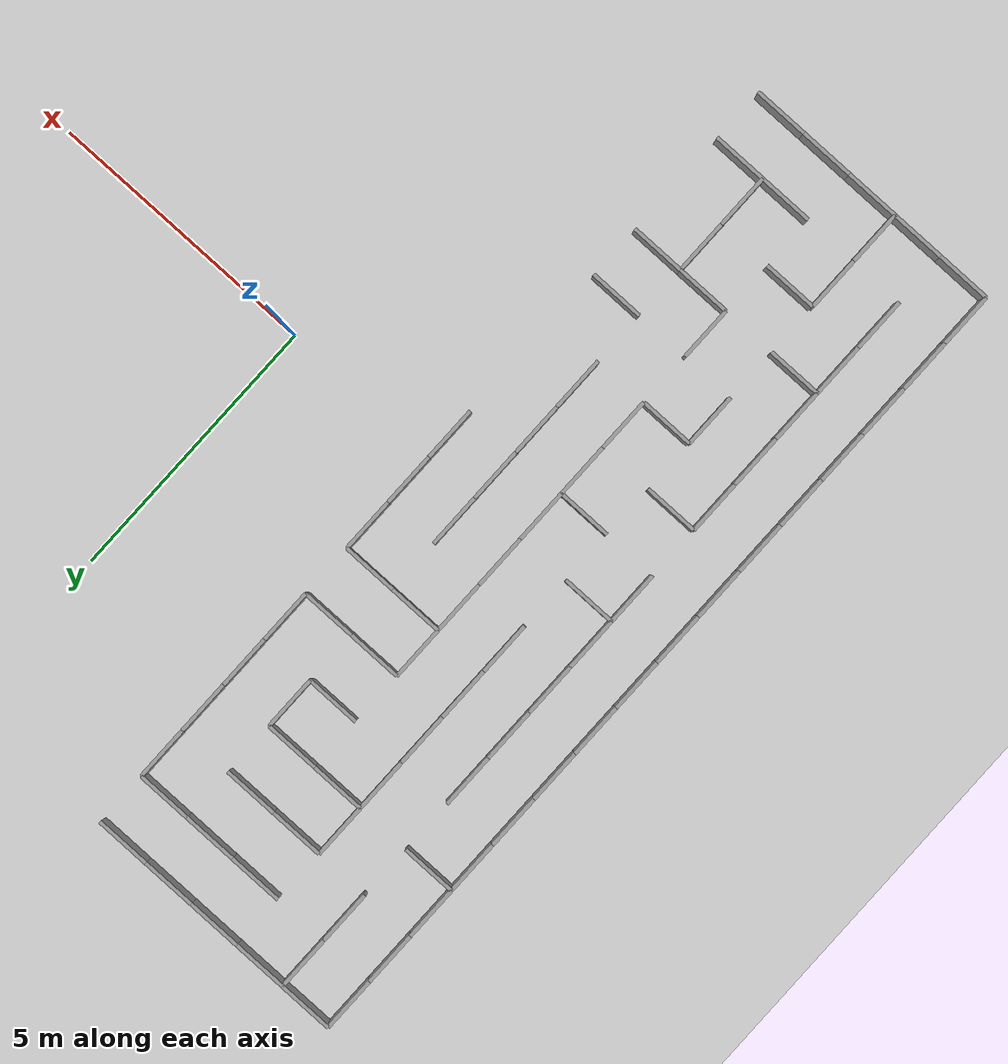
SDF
<sdf version="1.7">
 <world name="maze_world">
  <include><uri>model://sun</uri></include>
  <include><uri>model://ground_plane</uri></include>
  <model name="wall_0">
   <static>true</static>
   <pose>-7.5 8.0 0.25 0 0 0</pose>
   <link name="link">
    <collision name="collision"><geometry><box><size>1.0 0.066 0.5</size></box></geometry></collision>
    <visual name="visual">
     <geometry><box><size>1.0 0.066 0.5</size></box></geometry>
     <material>
      <script><uri>file://media/materials/scripts/gazebo.material</uri><name>Gazebo/Grey</name></script>
     </material>
    </visual>
   </link>
  </model>
  <model name="wall_1">
   <static>true</static>
   <pose>-6.5 8.0 0.25 0 0 0</pose>
   <link name="link">
    <collision name="collision"><geometry><box><size>1.0 0.066 0.5</size></box></geometry></collision>
    <visual name="visual">
     <geometry><box><size>1.0 0.066 0.5</size></box></geometry>
     <material>
      <script><uri>file://media/materials/scripts/gazebo.material</uri><name>Gazebo/Grey</name></script>
     </material>
    </visual>
   </link>
  </model>
  <model name="wall_2">
   <static>true</static>
   <pose>-5.5 8.0 0.25 0 0 0</pose>
   <link name="link">
    <collision name="collision"><geometry><box><size>1.0 0.066 0.5</size></box></geometry></collision>
    <visual name="visual">
     <geometry><box><size>1.0 0.066 0.5</size></box></geometry>
     <material>
      <script><uri>file://media/materials/scripts/gazebo.material</uri><name>Gazebo/Grey</name></script>
     </material>
    </visual>
   </link>
  </model>
  <model name="wall_3">
   <static>true</static>
   <pose>-4.5 8.0 0.25 0 0 0</pose>
   <link name="link">
    <collision name="collision"><geometry><box><size>1.0 0.066 0.5</size></box></geometry></collision>
    <visual name="visual">
     <geometry><box><size>1.0 0.066 0.5</size></box></geometry>
     <material>
      <script><uri>file://media/materials/scripts/gazebo.material</uri><name>Gazebo/Grey</name></script>
     </material>
    </visual>
   </link>
  </model>
  <model name="wall_4">
   <static>true</static>
   <pose>-3.5 8.0 0.25 0 0 0</pose>
   <link name="link">
    <collision name="collision"><geometry><box><size>1.0 0.066 0.5</size></box></geometry></collision>
    <visual name="visual">
     <geometry><box><size>1.0 0.066 0.5</size></box></geometry>
     <material>
      <script><uri>file://media/materials/scripts/gazebo.material</uri><name>Gazebo/Grey</name></script>
     </material>
    </visual>
   </link>
  </model>
  <model name="wall_16">
   <static>true</static>
   <pose>-8.0 7.5 0.25 0 0 1.5707963267948966</pose>
   <link name="link">
    <collision name="collision"><geometry><box><size>1.0 0.066 0.5</size></box></geometry></collision>
    <visual name="visual">
     <geometry><box><size>1.0 0.066 0.5</size></box></geometry>
     <material>
      <script><uri>file://media/materials/scripts/gazebo.material</uri><name>Gazebo/Grey</name></script>
     </material>
    </visual>
   </link>
  </model>
  <model name="wall_17">
   <static>true</static>
   <pose>-7.0 7.5 0.25 0 0 1.5707963267948966</pose>
   <link name="link">
    <collision name="collision"><geometry><box><size>1.0 0.066 0.5</size></box></geometry></collision>
    <visual name="visual">
     <geometry><box><size>1.0 0.066 0.5</size></box></geometry>
     <material>
      <script><uri>file://media/materials/scripts/gazebo.material</uri><name>Gazebo/Grey</name></script>
     </material>
    </visual>
   </link>
  </model>
  <model name="wall_19">
   <static>true</static>
   <pose>-5.5 7.0 0.25 0 0 0</pose>
   <link name="link">
    <collision name="collision"><geometry><box><size>1.0 0.066 0.5</size></box></geometry></collision>
    <visual name="visual">
     <geometry><box><size>1.0 0.066 0.5</size></box></geometry>
     <material>
      <script><uri>file://media/materials/scripts/gazebo.material</uri><name>Gazebo/Grey</name></script>
     </material>
    </visual>
   </link>
  </model>
  <model name="wall_20">
   <static>true</static>
   <pose>-4.5 7.0 0.25 0 0 0</pose>
   <link name="link">
    <collision name="collision"><geometry><box><size>1.0 0.066 0.5</size></box></geometry></collision>
    <visual name="visual">
     <geometry><box><size>1.0 0.066 0.5</size></box></geometry>
     <material>
      <script><uri>file://media/materials/scripts/gazebo.material</uri><name>Gazebo/Grey</name></script>
     </material>
    </visual>
   </link>
  </model>
  <model name="wall_21">
   <static>true</static>
   <pose>-3.5 7.0 0.25 0 0 0</pose>
   <link name="link">
    <collision name="collision"><geometry><box><size>1.0 0.066 0.5</size></box></geometry></collision>
    <visual name="visual">
     <geometry><box><size>1.0 0.066 0.5</size></box></geometry>
     <material>
      <script><uri>file://media/materials/scripts/gazebo.material</uri><name>Gazebo/Grey</name></script>
     </material>
    </visual>
   </link>
  </model>
  <model name="wall_30">
   <static>true</static>
   <pose>-8.0 6.5 0.25 0 0 1.5707963267948966</pose>
   <link name="link">
    <collision name="collision"><geometry><box><size>1.0 0.066 0.5</size></box></geometry></collision>
    <visual name="visual">
     <geometry><box><size>1.0 0.066 0.5</size></box></geometry>
     <material>
      <script><uri>file://media/materials/scripts/gazebo.material</uri><name>Gazebo/Grey</name></script>
     </material>
    </visual>
   </link>
  </model>
  <model name="wall_31">
   <static>true</static>
   <pose>-7.0 6.5 0.25 0 0 1.5707963267948966</pose>
   <link name="link">
    <collision name="collision"><geometry><box><size>1.0 0.066 0.5</size></box></geometry></collision>
    <visual name="visual">
     <geometry><box><size>1.0 0.066 0.5</size></box></geometry>
     <material>
      <script><uri>file://media/materials/scripts/gazebo.material</uri><name>Gazebo/Grey</name></script>
     </material>
    </visual>
   </link>
  </model>
  <model name="wall_32">
   <static>true</static>
   <pose>-3.0 6.5 0.25 0 0 1.5707963267948966</pose>
   <link name="link">
    <collision name="collision"><geometry><box><size>1.0 0.066 0.5</size></box></geometry></collision>
    <visual name="visual">
     <geometry><box><size>1.0 0.066 0.5</size></box></geometry>
     <material>
      <script><uri>file://media/materials/scripts/gazebo.material</uri><name>Gazebo/Grey</name></script>
     </material>
    </visual>
   </link>
  </model>
  <model name="wall_37">
   <static>true</static>
   <pose>-5.5 6.0 0.25 0 0 0</pose>
   <link name="link">
    <collision name="collision"><geometry><box><size>1.0 0.066 0.5</size></box></geometry></collision>
    <visual name="visual">
     <geometry><box><size>1.0 0.066 0.5</size></box></geometry>
     <material>
      <script><uri>file://media/materials/scripts/gazebo.material</uri><name>Gazebo/Grey</name></script>
     </material>
    </visual>
   </link>
  </model>
  <model name="wall_38">
   <static>true</static>
   <pose>-4.5 6.0 0.25 0 0 0</pose>
   <link name="link">
    <collision name="collision"><geometry><box><size>1.0 0.066 0.5</size></box></geometry></collision>
    <visual name="visual">
     <geometry><box><size>1.0 0.066 0.5</size></box></geometry>
     <material>
      <script><uri>file://media/materials/scripts/gazebo.material</uri><name>Gazebo/Grey</name></script>
     </material>
    </visual>
   </link>
  </model>
  <model name="wall_46">
   <static>true</static>
   <pose>-8.0 5.5 0.25 0 0 1.5707963267948966</pose>
   <link name="link">
    <collision name="collision"><geometry><box><size>1.0 0.066 0.5</size></box></geometry></collision>
    <visual name="visual">
     <geometry><box><size>1.0 0.066 0.5</size></box></geometry>
     <material>
      <script><uri>file://media/materials/scripts/gazebo.material</uri><name>Gazebo/Grey</name></script>
     </material>
    </visual>
   </link>
  </model>
  <model name="wall_47">
   <static>true</static>
   <pose>-6.0 5.5 0.25 0 0 1.5707963267948966</pose>
   <link name="link">
    <collision name="collision"><geometry><box><size>1.0 0.066 0.5</size></box></geometry></collision>
    <visual name="visual">
     <geometry><box><size>1.0 0.066 0.5</size></box></geometry>
     <material>
      <script><uri>file://media/materials/scripts/gazebo.material</uri><name>Gazebo/Grey</name></script>
     </material>
    </visual>
   </link>
  </model>
  <model name="wall_48">
   <static>true</static>
   <pose>-3.0 5.5 0.25 0 0 1.5707963267948966</pose>
   <link name="link">
    <collision name="collision"><geometry><box><size>1.0 0.066 0.5</size></box></geometry></collision>
    <visual name="visual">
     <geometry><box><size>1.0 0.066 0.5</size></box></geometry>
     <material>
      <script><uri>file://media/materials/scripts/gazebo.material</uri><name>Gazebo/Grey</name></script>
     </material>
    </visual>
   </link>
  </model>
  <model name="wall_53">
   <static>true</static>
   <pose>-7.5 5.0 0.25 0 0 0</pose>
   <link name="link">
    <collision name="collision"><geometry><box><size>1.0 0.066 0.5</size></box></geometry></collision>
    <visual name="visual">
     <geometry><box><size>1.0 0.066 0.5</size></box></geometry>
     <material>
      <script><uri>file://media/materials/scripts/gazebo.material</uri><name>Gazebo/Grey</name></script>
     </material>
    </visual>
   </link>
  </model>
  <model name="wall_54">
   <static>true</static>
   <pose>-5.5 5.0 0.25 0 0 0</pose>
   <link name="link">
    <collision name="collision"><geometry><box><size>1.0 0.066 0.5</size></box></geometry></collision>
    <visual name="visual">
     <geometry><box><size>1.0 0.066 0.5</size></box></geometry>
     <material>
      <script><uri>file://media/materials/scripts/gazebo.material</uri><name>Gazebo/Grey</name></script>
     </material>
    </visual>
   </link>
  </model>
  <model name="wall_55">
   <static>true</static>
   <pose>-4.5 5.0 0.25 0 0 0</pose>
   <link name="link">
    <collision name="collision"><geometry><box><size>1.0 0.066 0.5</size></box></geometry></collision>
    <visual name="visual">
     <geometry><box><size>1.0 0.066 0.5</size></box></geometry>
     <material>
      <script><uri>file://media/materials/scripts/gazebo.material</uri><name>Gazebo/Grey</name></script>
     </material>
    </visual>
   </link>
  </model>
  <model name="wall_62">
   <static>true</static>
   <pose>-8.0 4.5 0.25 0 0 1.5707963267948966</pose>
   <link name="link">
    <collision name="collision"><geometry><box><size>1.0 0.066 0.5</size></box></geometry></collision>
    <visual name="visual">
     <geometry><box><size>1.0 0.066 0.5</size></box></geometry>
     <material>
      <script><uri>file://media/materials/scripts/gazebo.material</uri><name>Gazebo/Grey</name></script>
     </material>
    </visual>
   </link>
  </model>
  <model name="wall_63">
   <static>true</static>
   <pose>-6.0 4.5 0.25 0 0 1.5707963267948966</pose>
   <link name="link">
    <collision name="collision"><geometry><box><size>1.0 0.066 0.5</size></box></geometry></collision>
    <visual name="visual">
     <geometry><box><size>1.0 0.066 0.5</size></box></geometry>
     <material>
      <script><uri>file://media/materials/scripts/gazebo.material</uri><name>Gazebo/Grey</name></script>
     </material>
    </visual>
   </link>
  </model>
  <model name="wall_64">
   <static>true</static>
   <pose>-4.0 4.5 0.25 0 0 1.5707963267948966</pose>
   <link name="link">
    <collision name="collision"><geometry><box><size>1.0 0.066 0.5</size></box></geometry></collision>
    <visual name="visual">
     <geometry><box><size>1.0 0.066 0.5</size></box></geometry>
     <material>
      <script><uri>file://media/materials/scripts/gazebo.material</uri><name>Gazebo/Grey</name></script>
     </material>
    </visual>
   </link>
  </model>
  <model name="wall_65">
   <static>true</static>
   <pose>-3.0 4.5 0.25 0 0 1.5707963267948966</pose>
   <link name="link">
    <collision name="collision"><geometry><box><size>1.0 0.066 0.5</size></box></geometry></collision>
    <visual name="visual">
     <geometry><box><size>1.0 0.066 0.5</size></box></geometry>
     <material>
      <script><uri>file://media/materials/scripts/gazebo.material</uri><name>Gazebo/Grey</name></script>
     </material>
    </visual>
   </link>
  </model>
  <model name="wall_71">
   <static>true</static>
   <pose>-4.5 4.0 0.25 0 0 0</pose>
   <link name="link">
    <collision name="collision"><geometry><box><size>1.0 0.066 0.5</size></box></geometry></collision>
    <visual name="visual">
     <geometry><box><size>1.0 0.066 0.5</size></box></geometry>
     <material>
      <script><uri>file://media/materials/scripts/gazebo.material</uri><name>Gazebo/Grey</name></script>
     </material>
    </visual>
   </link>
  </model>
  <model name="wall_75">
   <static>true</static>
   <pose>-8.0 3.5 0.25 0 0 1.5707963267948966</pose>
   <link name="link">
    <collision name="collision"><geometry><box><size>1.0 0.066 0.5</size></box></geometry></collision>
    <visual name="visual">
     <geometry><box><size>1.0 0.066 0.5</size></box></geometry>
     <material>
      <script><uri>file://media/materials/scripts/gazebo.material</uri><name>Gazebo/Grey</name></script>
     </material>
    </visual>
   </link>
  </model>
  <model name="wall_76">
   <static>true</static>
   <pose>-7.0 3.5 0.25 0 0 1.5707963267948966</pose>
   <link name="link">
    <collision name="collision"><geometry><box><size>1.0 0.066 0.5</size></box></geometry></collision>
    <visual name="visual">
     <geometry><box><size>1.0 0.066 0.5</size></box></geometry>
     <material>
      <script><uri>file://media/materials/scripts/gazebo.material</uri><name>Gazebo/Grey</name></script>
     </material>
    </visual>
   </link>
  </model>
  <model name="wall_77">
   <static>true</static>
   <pose>-6.0 3.5 0.25 0 0 1.5707963267948966</pose>
   <link name="link">
    <collision name="collision"><geometry><box><size>1.0 0.066 0.5</size></box></geometry></collision>
    <visual name="visual">
     <geometry><box><size>1.0 0.066 0.5</size></box></geometry>
     <material>
      <script><uri>file://media/materials/scripts/gazebo.material</uri><name>Gazebo/Grey</name></script>
     </material>
    </visual>
   </link>
  </model>
  <model name="wall_78">
   <static>true</static>
   <pose>-3.0 3.5 0.25 0 0 1.5707963267948966</pose>
   <link name="link">
    <collision name="collision"><geometry><box><size>1.0 0.066 0.5</size></box></geometry></collision>
    <visual name="visual">
     <geometry><box><size>1.0 0.066 0.5</size></box></geometry>
     <material>
      <script><uri>file://media/materials/scripts/gazebo.material</uri><name>Gazebo/Grey</name></script>
     </material>
    </visual>
   </link>
  </model>
  <model name="wall_86">
   <static>true</static>
   <pose>-4.5 3.0 0.25 0 0 0</pose>
   <link name="link">
    <collision name="collision"><geometry><box><size>1.0 0.066 0.5</size></box></geometry></collision>
    <visual name="visual">
     <geometry><box><size>1.0 0.066 0.5</size></box></geometry>
     <material>
      <script><uri>file://media/materials/scripts/gazebo.material</uri><name>Gazebo/Grey</name></script>
     </material>
    </visual>
   </link>
  </model>
  <model name="wall_87">
   <static>true</static>
   <pose>-3.5 3.0 0.25 0 0 0</pose>
   <link name="link">
    <collision name="collision"><geometry><box><size>1.0 0.066 0.5</size></box></geometry></collision>
    <visual name="visual">
     <geometry><box><size>1.0 0.066 0.5</size></box></geometry>
     <material>
      <script><uri>file://media/materials/scripts/gazebo.material</uri><name>Gazebo/Grey</name></script>
     </material>
    </visual>
   </link>
  </model>
  <model name="wall_92">
   <static>true</static>
   <pose>-8.0 2.5 0.25 0 0 1.5707963267948966</pose>
   <link name="link">
    <collision name="collision"><geometry><box><size>1.0 0.066 0.5</size></box></geometry></collision>
    <visual name="visual">
     <geometry><box><size>1.0 0.066 0.5</size></box></geometry>
     <material>
      <script><uri>file://media/materials/scripts/gazebo.material</uri><name>Gazebo/Grey</name></script>
     </material>
    </visual>
   </link>
  </model>
  <model name="wall_93">
   <static>true</static>
   <pose>-7.0 2.5 0.25 0 0 1.5707963267948966</pose>
   <link name="link">
    <collision name="collision"><geometry><box><size>1.0 0.066 0.5</size></box></geometry></collision>
    <visual name="visual">
     <geometry><box><size>1.0 0.066 0.5</size></box></geometry>
     <material>
      <script><uri>file://media/materials/scripts/gazebo.material</uri><name>Gazebo/Grey</name></script>
     </material>
    </visual>
   </link>
  </model>
  <model name="wall_94">
   <static>true</static>
   <pose>-6.0 2.5 0.25 0 0 1.5707963267948966</pose>
   <link name="link">
    <collision name="collision"><geometry><box><size>1.0 0.066 0.5</size></box></geometry></collision>
    <visual name="visual">
     <geometry><box><size>1.0 0.066 0.5</size></box></geometry>
     <material>
      <script><uri>file://media/materials/scripts/gazebo.material</uri><name>Gazebo/Grey</name></script>
     </material>
    </visual>
   </link>
  </model>
  <model name="wall_95">
   <static>true</static>
   <pose>-5.0 2.5 0.25 0 0 1.5707963267948966</pose>
   <link name="link">
    <collision name="collision"><geometry><box><size>1.0 0.066 0.5</size></box></geometry></collision>
    <visual name="visual">
     <geometry><box><size>1.0 0.066 0.5</size></box></geometry>
     <material>
      <script><uri>file://media/materials/scripts/gazebo.material</uri><name>Gazebo/Grey</name></script>
     </material>
    </visual>
   </link>
  </model>
  <model name="wall_102">
   <static>true</static>
   <pose>-4.5 2.0 0.25 0 0 0</pose>
   <link name="link">
    <collision name="collision"><geometry><box><size>1.0 0.066 0.5</size></box></geometry></collision>
    <visual name="visual">
     <geometry><box><size>1.0 0.066 0.5</size></box></geometry>
     <material>
      <script><uri>file://media/materials/scripts/gazebo.material</uri><name>Gazebo/Grey</name></script>
     </material>
    </visual>
   </link>
  </model>
  <model name="wall_103">
   <static>true</static>
   <pose>-3.5 2.0 0.25 0 0 0</pose>
   <link name="link">
    <collision name="collision"><geometry><box><size>1.0 0.066 0.5</size></box></geometry></collision>
    <visual name="visual">
     <geometry><box><size>1.0 0.066 0.5</size></box></geometry>
     <material>
      <script><uri>file://media/materials/scripts/gazebo.material</uri><name>Gazebo/Grey</name></script>
     </material>
    </visual>
   </link>
  </model>
  <model name="wall_108">
   <static>true</static>
   <pose>-8.0 1.5 0.25 0 0 1.5707963267948966</pose>
   <link name="link">
    <collision name="collision"><geometry><box><size>1.0 0.066 0.5</size></box></geometry></collision>
    <visual name="visual">
     <geometry><box><size>1.0 0.066 0.5</size></box></geometry>
     <material>
      <script><uri>file://media/materials/scripts/gazebo.material</uri><name>Gazebo/Grey</name></script>
     </material>
    </visual>
   </link>
  </model>
  <model name="wall_109">
   <static>true</static>
   <pose>-7.0 1.5 0.25 0 0 1.5707963267948966</pose>
   <link name="link">
    <collision name="collision"><geometry><box><size>1.0 0.066 0.5</size></box></geometry></collision>
    <visual name="visual">
     <geometry><box><size>1.0 0.066 0.5</size></box></geometry>
     <material>
      <script><uri>file://media/materials/scripts/gazebo.material</uri><name>Gazebo/Grey</name></script>
     </material>
    </visual>
   </link>
  </model>
  <model name="wall_110">
   <static>true</static>
   <pose>-6.0 1.5 0.25 0 0 1.5707963267948966</pose>
   <link name="link">
    <collision name="collision"><geometry><box><size>1.0 0.066 0.5</size></box></geometry></collision>
    <visual name="visual">
     <geometry><box><size>1.0 0.066 0.5</size></box></geometry>
     <material>
      <script><uri>file://media/materials/scripts/gazebo.material</uri><name>Gazebo/Grey</name></script>
     </material>
    </visual>
   </link>
  </model>
  <model name="wall_111">
   <static>true</static>
   <pose>-5.0 1.5 0.25 0 0 1.5707963267948966</pose>
   <link name="link">
    <collision name="collision"><geometry><box><size>1.0 0.066 0.5</size></box></geometry></collision>
    <visual name="visual">
     <geometry><box><size>1.0 0.066 0.5</size></box></geometry>
     <material>
      <script><uri>file://media/materials/scripts/gazebo.material</uri><name>Gazebo/Grey</name></script>
     </material>
    </visual>
   </link>
  </model>
  <model name="wall_112">
   <static>true</static>
   <pose>-3.0 1.5 0.25 0 0 1.5707963267948966</pose>
   <link name="link">
    <collision name="collision"><geometry><box><size>1.0 0.066 0.5</size></box></geometry></collision>
    <visual name="visual">
     <geometry><box><size>1.0 0.066 0.5</size></box></geometry>
     <material>
      <script><uri>file://media/materials/scripts/gazebo.material</uri><name>Gazebo/Grey</name></script>
     </material>
    </visual>
   </link>
  </model>
  <model name="wall_124">
   <static>true</static>
   <pose>-8.0 0.5 0.25 0 0 1.5707963267948966</pose>
   <link name="link">
    <collision name="collision"><geometry><box><size>1.0 0.066 0.5</size></box></geometry></collision>
    <visual name="visual">
     <geometry><box><size>1.0 0.066 0.5</size></box></geometry>
     <material>
      <script><uri>file://media/materials/scripts/gazebo.material</uri><name>Gazebo/Grey</name></script>
     </material>
    </visual>
   </link>
  </model>
  <model name="wall_125">
   <static>true</static>
   <pose>-7.0 0.5 0.25 0 0 1.5707963267948966</pose>
   <link name="link">
    <collision name="collision"><geometry><box><size>1.0 0.066 0.5</size></box></geometry></collision>
    <visual name="visual">
     <geometry><box><size>1.0 0.066 0.5</size></box></geometry>
     <material>
      <script><uri>file://media/materials/scripts/gazebo.material</uri><name>Gazebo/Grey</name></script>
     </material>
    </visual>
   </link>
  </model>
  <model name="wall_126">
   <static>true</static>
   <pose>-5.0 0.5 0.25 0 0 1.5707963267948966</pose>
   <link name="link">
    <collision name="collision"><geometry><box><size>1.0 0.066 0.5</size></box></geometry></collision>
    <visual name="visual">
     <geometry><box><size>1.0 0.066 0.5</size></box></geometry>
     <material>
      <script><uri>file://media/materials/scripts/gazebo.material</uri><name>Gazebo/Grey</name></script>
     </material>
    </visual>
   </link>
  </model>
  <model name="wall_127">
   <static>true</static>
   <pose>-4.0 0.5 0.25 0 0 1.5707963267948966</pose>
   <link name="link">
    <collision name="collision"><geometry><box><size>1.0 0.066 0.5</size></box></geometry></collision>
    <visual name="visual">
     <geometry><box><size>1.0 0.066 0.5</size></box></geometry>
     <material>
      <script><uri>file://media/materials/scripts/gazebo.material</uri><name>Gazebo/Grey</name></script>
     </material>
    </visual>
   </link>
  </model>
  <model name="wall_128">
   <static>true</static>
   <pose>-3.0 0.5 0.25 0 0 1.5707963267948966</pose>
   <link name="link">
    <collision name="collision"><geometry><box><size>1.0 0.066 0.5</size></box></geometry></collision>
    <visual name="visual">
     <geometry><box><size>1.0 0.066 0.5</size></box></geometry>
     <material>
      <script><uri>file://media/materials/scripts/gazebo.material</uri><name>Gazebo/Grey</name></script>
     </material>
    </visual>
   </link>
  </model>
  <model name="wall_137">
   <static>true</static>
   <pose>-6.5 0.0 0.25 0 0 0</pose>
   <link name="link">
    <collision name="collision"><geometry><box><size>1.0 0.066 0.5</size></box></geometry></collision>
    <visual name="visual">
     <geometry><box><size>1.0 0.066 0.5</size></box></geometry>
     <material>
      <script><uri>file://media/materials/scripts/gazebo.material</uri><name>Gazebo/Grey</name></script>
     </material>
    </visual>
   </link>
  </model>
  <model name="wall_140">
   <static>true</static>
   <pose>-8.0 -0.5 0.25 0 0 1.5707963267948966</pose>
   <link name="link">
    <collision name="collision"><geometry><box><size>1.0 0.066 0.5</size></box></geometry></collision>
    <visual name="visual">
     <geometry><box><size>1.0 0.066 0.5</size></box></geometry>
     <material>
      <script><uri>file://media/materials/scripts/gazebo.material</uri><name>Gazebo/Grey</name></script>
     </material>
    </visual>
   </link>
  </model>
  <model name="wall_141">
   <static>true</static>
   <pose>-7.0 -0.5 0.25 0 0 1.5707963267948966</pose>
   <link name="link">
    <collision name="collision"><geometry><box><size>1.0 0.066 0.5</size></box></geometry></collision>
    <visual name="visual">
     <geometry><box><size>1.0 0.066 0.5</size></box></geometry>
     <material>
      <script><uri>file://media/materials/scripts/gazebo.material</uri><name>Gazebo/Grey</name></script>
     </material>
    </visual>
   </link>
  </model>
  <model name="wall_142">
   <static>true</static>
   <pose>-5.0 -0.5 0.25 0 0 1.5707963267948966</pose>
   <link name="link">
    <collision name="collision"><geometry><box><size>1.0 0.066 0.5</size></box></geometry></collision>
    <visual name="visual">
     <geometry><box><size>1.0 0.066 0.5</size></box></geometry>
     <material>
      <script><uri>file://media/materials/scripts/gazebo.material</uri><name>Gazebo/Grey</name></script>
     </material>
    </visual>
   </link>
  </model>
  <model name="wall_143">
   <static>true</static>
   <pose>-4.0 -0.5 0.25 0 0 1.5707963267948966</pose>
   <link name="link">
    <collision name="collision"><geometry><box><size>1.0 0.066 0.5</size></box></geometry></collision>
    <visual name="visual">
     <geometry><box><size>1.0 0.066 0.5</size></box></geometry>
     <material>
      <script><uri>file://media/materials/scripts/gazebo.material</uri><name>Gazebo/Grey</name></script>
     </material>
    </visual>
   </link>
  </model>
  <model name="wall_144">
   <static>true</static>
   <pose>-3.0 -0.5 0.25 0 0 1.5707963267948966</pose>
   <link name="link">
    <collision name="collision"><geometry><box><size>1.0 0.066 0.5</size></box></geometry></collision>
    <visual name="visual">
     <geometry><box><size>1.0 0.066 0.5</size></box></geometry>
     <material>
      <script><uri>file://media/materials/scripts/gazebo.material</uri><name>Gazebo/Grey</name></script>
     </material>
    </visual>
   </link>
  </model>
  <model name="wall_152">
   <static>true</static>
   <pose>-5.5 -1.0 0.25 0 0 0</pose>
   <link name="link">
    <collision name="collision"><geometry><box><size>1.0 0.066 0.5</size></box></geometry></collision>
    <visual name="visual">
     <geometry><box><size>1.0 0.066 0.5</size></box></geometry>
     <material>
      <script><uri>file://media/materials/scripts/gazebo.material</uri><name>Gazebo/Grey</name></script>
     </material>
    </visual>
   </link>
  </model>
  <model name="wall_157">
   <static>true</static>
   <pose>-8.0 -1.5 0.25 0 0 1.5707963267948966</pose>
   <link name="link">
    <collision name="collision"><geometry><box><size>1.0 0.066 0.5</size></box></geometry></collision>
    <visual name="visual">
     <geometry><box><size>1.0 0.066 0.5</size></box></geometry>
     <material>
      <script><uri>file://media/materials/scripts/gazebo.material</uri><name>Gazebo/Grey</name></script>
     </material>
    </visual>
   </link>
  </model>
  <model name="wall_158">
   <static>true</static>
   <pose>-5.0 -1.5 0.25 0 0 1.5707963267948966</pose>
   <link name="link">
    <collision name="collision"><geometry><box><size>1.0 0.066 0.5</size></box></geometry></collision>
    <visual name="visual">
     <geometry><box><size>1.0 0.066 0.5</size></box></geometry>
     <material>
      <script><uri>file://media/materials/scripts/gazebo.material</uri><name>Gazebo/Grey</name></script>
     </material>
    </visual>
   </link>
  </model>
  <model name="wall_159">
   <static>true</static>
   <pose>-4.0 -1.5 0.25 0 0 1.5707963267948966</pose>
   <link name="link">
    <collision name="collision"><geometry><box><size>1.0 0.066 0.5</size></box></geometry></collision>
    <visual name="visual">
     <geometry><box><size>1.0 0.066 0.5</size></box></geometry>
     <material>
      <script><uri>file://media/materials/scripts/gazebo.material</uri><name>Gazebo/Grey</name></script>
     </material>
    </visual>
   </link>
  </model>
  <model name="wall_167">
   <static>true</static>
   <pose>-6.5 -2.0 0.25 0 0 0</pose>
   <link name="link">
    <collision name="collision"><geometry><box><size>1.0 0.066 0.5</size></box></geometry></collision>
    <visual name="visual">
     <geometry><box><size>1.0 0.066 0.5</size></box></geometry>
     <material>
      <script><uri>file://media/materials/scripts/gazebo.material</uri><name>Gazebo/Grey</name></script>
     </material>
    </visual>
   </link>
  </model>
  <model name="wall_172">
   <static>true</static>
   <pose>-8.0 -2.5 0.25 0 0 1.5707963267948966</pose>
   <link name="link">
    <collision name="collision"><geometry><box><size>1.0 0.066 0.5</size></box></geometry></collision>
    <visual name="visual">
     <geometry><box><size>1.0 0.066 0.5</size></box></geometry>
     <material>
      <script><uri>file://media/materials/scripts/gazebo.material</uri><name>Gazebo/Grey</name></script>
     </material>
    </visual>
   </link>
  </model>
  <model name="wall_173">
   <static>true</static>
   <pose>-7.0 -2.5 0.25 0 0 1.5707963267948966</pose>
   <link name="link">
    <collision name="collision"><geometry><box><size>1.0 0.066 0.5</size></box></geometry></collision>
    <visual name="visual">
     <geometry><box><size>1.0 0.066 0.5</size></box></geometry>
     <material>
      <script><uri>file://media/materials/scripts/gazebo.material</uri><name>Gazebo/Grey</name></script>
     </material>
    </visual>
   </link>
  </model>
  <model name="wall_174">
   <static>true</static>
   <pose>-5.0 -2.5 0.25 0 0 1.5707963267948966</pose>
   <link name="link">
    <collision name="collision"><geometry><box><size>1.0 0.066 0.5</size></box></geometry></collision>
    <visual name="visual">
     <geometry><box><size>1.0 0.066 0.5</size></box></geometry>
     <material>
      <script><uri>file://media/materials/scripts/gazebo.material</uri><name>Gazebo/Grey</name></script>
     </material>
    </visual>
   </link>
  </model>
  <model name="wall_175">
   <static>true</static>
   <pose>-4.0 -2.5 0.25 0 0 1.5707963267948966</pose>
   <link name="link">
    <collision name="collision"><geometry><box><size>1.0 0.066 0.5</size></box></geometry></collision>
    <visual name="visual">
     <geometry><box><size>1.0 0.066 0.5</size></box></geometry>
     <material>
      <script><uri>file://media/materials/scripts/gazebo.material</uri><name>Gazebo/Grey</name></script>
     </material>
    </visual>
   </link>
  </model>
  <model name="wall_183">
   <static>true</static>
   <pose>-5.5 -3.0 0.25 0 0 0</pose>
   <link name="link">
    <collision name="collision"><geometry><box><size>1.0 0.066 0.5</size></box></geometry></collision>
    <visual name="visual">
     <geometry><box><size>1.0 0.066 0.5</size></box></geometry>
     <material>
      <script><uri>file://media/materials/scripts/gazebo.material</uri><name>Gazebo/Grey</name></script>
     </material>
    </visual>
   </link>
  </model>
  <model name="wall_189">
   <static>true</static>
   <pose>-8.0 -3.5 0.25 0 0 1.5707963267948966</pose>
   <link name="link">
    <collision name="collision"><geometry><box><size>1.0 0.066 0.5</size></box></geometry></collision>
    <visual name="visual">
     <geometry><box><size>1.0 0.066 0.5</size></box></geometry>
     <material>
      <script><uri>file://media/materials/scripts/gazebo.material</uri><name>Gazebo/Grey</name></script>
     </material>
    </visual>
   </link>
  </model>
  <model name="wall_190">
   <static>true</static>
   <pose>-7.0 -3.5 0.25 0 0 1.5707963267948966</pose>
   <link name="link">
    <collision name="collision"><geometry><box><size>1.0 0.066 0.5</size></box></geometry></collision>
    <visual name="visual">
     <geometry><box><size>1.0 0.066 0.5</size></box></geometry>
     <material>
      <script><uri>file://media/materials/scripts/gazebo.material</uri><name>Gazebo/Grey</name></script>
     </material>
    </visual>
   </link>
  </model>
  <model name="wall_191">
   <static>true</static>
   <pose>-6.0 -3.5 0.25 0 0 1.5707963267948966</pose>
   <link name="link">
    <collision name="collision"><geometry><box><size>1.0 0.066 0.5</size></box></geometry></collision>
    <visual name="visual">
     <geometry><box><size>1.0 0.066 0.5</size></box></geometry>
     <material>
      <script><uri>file://media/materials/scripts/gazebo.material</uri><name>Gazebo/Grey</name></script>
     </material>
    </visual>
   </link>
  </model>
  <model name="wall_196">
   <static>true</static>
   <pose>-3.5 -4.0 0.25 0 0 0</pose>
   <link name="link">
    <collision name="collision"><geometry><box><size>1.0 0.066 0.5</size></box></geometry></collision>
    <visual name="visual">
     <geometry><box><size>1.0 0.066 0.5</size></box></geometry>
     <material>
      <script><uri>file://media/materials/scripts/gazebo.material</uri><name>Gazebo/Grey</name></script>
     </material>
    </visual>
   </link>
  </model>
  <model name="wall_205">
   <static>true</static>
   <pose>-8.0 -4.5 0.25 0 0 1.5707963267948966</pose>
   <link name="link">
    <collision name="collision"><geometry><box><size>1.0 0.066 0.5</size></box></geometry></collision>
    <visual name="visual">
     <geometry><box><size>1.0 0.066 0.5</size></box></geometry>
     <material>
      <script><uri>file://media/materials/scripts/gazebo.material</uri><name>Gazebo/Grey</name></script>
     </material>
    </visual>
   </link>
  </model>
  <model name="wall_206">
   <static>true</static>
   <pose>-7.0 -4.5 0.25 0 0 1.5707963267948966</pose>
   <link name="link">
    <collision name="collision"><geometry><box><size>1.0 0.066 0.5</size></box></geometry></collision>
    <visual name="visual">
     <geometry><box><size>1.0 0.066 0.5</size></box></geometry>
     <material>
      <script><uri>file://media/materials/scripts/gazebo.material</uri><name>Gazebo/Grey</name></script>
     </material>
    </visual>
   </link>
  </model>
  <model name="wall_207">
   <static>true</static>
   <pose>-5.0 -4.5 0.25 0 0 1.5707963267948966</pose>
   <link name="link">
    <collision name="collision"><geometry><box><size>1.0 0.066 0.5</size></box></geometry></collision>
    <visual name="visual">
     <geometry><box><size>1.0 0.066 0.5</size></box></geometry>
     <material>
      <script><uri>file://media/materials/scripts/gazebo.material</uri><name>Gazebo/Grey</name></script>
     </material>
    </visual>
   </link>
  </model>
  <model name="wall_211">
   <static>true</static>
   <pose>-6.5 -5.0 0.25 0 0 0</pose>
   <link name="link">
    <collision name="collision"><geometry><box><size>1.0 0.066 0.5</size></box></geometry></collision>
    <visual name="visual">
     <geometry><box><size>1.0 0.066 0.5</size></box></geometry>
     <material>
      <script><uri>file://media/materials/scripts/gazebo.material</uri><name>Gazebo/Grey</name></script>
     </material>
    </visual>
   </link>
  </model>
  <model name="wall_212">
   <static>true</static>
   <pose>-4.5 -5.0 0.25 0 0 0</pose>
   <link name="link">
    <collision name="collision"><geometry><box><size>1.0 0.066 0.5</size></box></geometry></collision>
    <visual name="visual">
     <geometry><box><size>1.0 0.066 0.5</size></box></geometry>
     <material>
      <script><uri>file://media/materials/scripts/gazebo.material</uri><name>Gazebo/Grey</name></script>
     </material>
    </visual>
   </link>
  </model>
  <model name="wall_213">
   <static>true</static>
   <pose>-3.5 -5.0 0.25 0 0 0</pose>
   <link name="link">
    <collision name="collision"><geometry><box><size>1.0 0.066 0.5</size></box></geometry></collision>
    <visual name="visual">
     <geometry><box><size>1.0 0.066 0.5</size></box></geometry>
     <material>
      <script><uri>file://media/materials/scripts/gazebo.material</uri><name>Gazebo/Grey</name></script>
     </material>
    </visual>
   </link>
  </model>
  <model name="wall_221">
   <static>true</static>
   <pose>-8.0 -5.5 0.25 0 0 1.5707963267948966</pose>
   <link name="link">
    <collision name="collision"><geometry><box><size>1.0 0.066 0.5</size></box></geometry></collision>
    <visual name="visual">
     <geometry><box><size>1.0 0.066 0.5</size></box></geometry>
     <material>
      <script><uri>file://media/materials/scripts/gazebo.material</uri><name>Gazebo/Grey</name></script>
     </material>
    </visual>
   </link>
  </model>
  <model name="wall_222">
   <static>true</static>
   <pose>-7.0 -5.5 0.25 0 0 1.5707963267948966</pose>
   <link name="link">
    <collision name="collision"><geometry><box><size>1.0 0.066 0.5</size></box></geometry></collision>
    <visual name="visual">
     <geometry><box><size>1.0 0.066 0.5</size></box></geometry>
     <material>
      <script><uri>file://media/materials/scripts/gazebo.material</uri><name>Gazebo/Grey</name></script>
     </material>
    </visual>
   </link>
  </model>
  <model name="wall_223">
   <static>true</static>
   <pose>-4.0 -5.5 0.25 0 0 1.5707963267948966</pose>
   <link name="link">
    <collision name="collision"><geometry><box><size>1.0 0.066 0.5</size></box></geometry></collision>
    <visual name="visual">
     <geometry><box><size>1.0 0.066 0.5</size></box></geometry>
     <material>
      <script><uri>file://media/materials/scripts/gazebo.material</uri><name>Gazebo/Grey</name></script>
     </material>
    </visual>
   </link>
  </model>
  <model name="wall_229">
   <static>true</static>
   <pose>-5.5 -6.0 0.25 0 0 0</pose>
   <link name="link">
    <collision name="collision"><geometry><box><size>1.0 0.066 0.5</size></box></geometry></collision>
    <visual name="visual">
     <geometry><box><size>1.0 0.066 0.5</size></box></geometry>
     <material>
      <script><uri>file://media/materials/scripts/gazebo.material</uri><name>Gazebo/Grey</name></script>
     </material>
    </visual>
   </link>
  </model>
  <model name="wall_236">
   <static>true</static>
   <pose>-8.0 -6.5 0.25 0 0 1.5707963267948966</pose>
   <link name="link">
    <collision name="collision"><geometry><box><size>1.0 0.066 0.5</size></box></geometry></collision>
    <visual name="visual">
     <geometry><box><size>1.0 0.066 0.5</size></box></geometry>
     <material>
      <script><uri>file://media/materials/scripts/gazebo.material</uri><name>Gazebo/Grey</name></script>
     </material>
    </visual>
   </link>
  </model>
  <model name="wall_237">
   <static>true</static>
   <pose>-7.0 -6.5 0.25 0 0 1.5707963267948966</pose>
   <link name="link">
    <collision name="collision"><geometry><box><size>1.0 0.066 0.5</size></box></geometry></collision>
    <visual name="visual">
     <geometry><box><size>1.0 0.066 0.5</size></box></geometry>
     <material>
      <script><uri>file://media/materials/scripts/gazebo.material</uri><name>Gazebo/Grey</name></script>
     </material>
    </visual>
   </link>
  </model>
  <model name="wall_238">
   <static>true</static>
   <pose>-6.0 -6.5 0.25 0 0 1.5707963267948966</pose>
   <link name="link">
    <collision name="collision"><geometry><box><size>1.0 0.066 0.5</size></box></geometry></collision>
    <visual name="visual">
     <geometry><box><size>1.0 0.066 0.5</size></box></geometry>
     <material>
      <script><uri>file://media/materials/scripts/gazebo.material</uri><name>Gazebo/Grey</name></script>
     </material>
    </visual>
   </link>
  </model>
  <model name="wall_239">
   <static>true</static>
   <pose>-4.0 -6.5 0.25 0 0 1.5707963267948966</pose>
   <link name="link">
    <collision name="collision"><geometry><box><size>1.0 0.066 0.5</size></box></geometry></collision>
    <visual name="visual">
     <geometry><box><size>1.0 0.066 0.5</size></box></geometry>
     <material>
      <script><uri>file://media/materials/scripts/gazebo.material</uri><name>Gazebo/Grey</name></script>
     </material>
    </visual>
   </link>
  </model>
  <model name="wall_245">
   <static>true</static>
   <pose>-4.5 -7.0 0.25 0 0 0</pose>
   <link name="link">
    <collision name="collision"><geometry><box><size>1.0 0.066 0.5</size></box></geometry></collision>
    <visual name="visual">
     <geometry><box><size>1.0 0.066 0.5</size></box></geometry>
     <material>
      <script><uri>file://media/materials/scripts/gazebo.material</uri><name>Gazebo/Grey</name></script>
     </material>
    </visual>
   </link>
  </model>
  <model name="wall_246">
   <static>true</static>
   <pose>-3.5 -7.0 0.25 0 0 0</pose>
   <link name="link">
    <collision name="collision"><geometry><box><size>1.0 0.066 0.5</size></box></geometry></collision>
    <visual name="visual">
     <geometry><box><size>1.0 0.066 0.5</size></box></geometry>
     <material>
      <script><uri>file://media/materials/scripts/gazebo.material</uri><name>Gazebo/Grey</name></script>
     </material>
    </visual>
   </link>
  </model>
  <model name="wall_254">
   <static>true</static>
   <pose>-8.0 -7.5 0.25 0 0 1.5707963267948966</pose>
   <link name="link">
    <collision name="collision"><geometry><box><size>1.0 0.066 0.5</size></box></geometry></collision>
    <visual name="visual">
     <geometry><box><size>1.0 0.066 0.5</size></box></geometry>
     <material>
      <script><uri>file://media/materials/scripts/gazebo.material</uri><name>Gazebo/Grey</name></script>
     </material>
    </visual>
   </link>
  </model>
  <model name="wall_255">
   <static>true</static>
   <pose>-6.0 -7.5 0.25 0 0 1.5707963267948966</pose>
   <link name="link">
    <collision name="collision"><geometry><box><size>1.0 0.066 0.5</size></box></geometry></collision>
    <visual name="visual">
     <geometry><box><size>1.0 0.066 0.5</size></box></geometry>
     <material>
      <script><uri>file://media/materials/scripts/gazebo.material</uri><name>Gazebo/Grey</name></script>
     </material>
    </visual>
   </link>
  </model>
  <model name="wall_257">
   <static>true</static>
   <pose>-7.5 -8.0 0.25 0 0 0</pose>
   <link name="link">
    <collision name="collision"><geometry><box><size>1.0 0.066 0.5</size></box></geometry></collision>
    <visual name="visual">
     <geometry><box><size>1.0 0.066 0.5</size></box></geometry>
     <material>
      <script><uri>file://media/materials/scripts/gazebo.material</uri><name>Gazebo/Grey</name></script>
     </material>
    </visual>
   </link>
  </model>
  <model name="wall_258">
   <static>true</static>
   <pose>-6.5 -8.0 0.25 0 0 0</pose>
   <link name="link">
    <collision name="collision"><geometry><box><size>1.0 0.066 0.5</size></box></geometry></collision>
    <visual name="visual">
     <geometry><box><size>1.0 0.066 0.5</size></box></geometry>
     <material>
      <script><uri>file://media/materials/scripts/gazebo.material</uri><name>Gazebo/Grey</name></script>
     </material>
    </visual>
   </link>
  </model>
  <model name="wall_259">
   <static>true</static>
   <pose>-5.5 -8.0 0.25 0 0 0</pose>
   <link name="link">
    <collision name="collision"><geometry><box><size>1.0 0.066 0.5</size></box></geometry></collision>
    <visual name="visual">
     <geometry><box><size>1.0 0.066 0.5</size></box></geometry>
     <material>
      <script><uri>file://media/materials/scripts/gazebo.material</uri><name>Gazebo/Grey</name></script>
     </material>
    </visual>
   </link>
  </model>
  <model name="wall_260">
   <static>true</static>
   <pose>-4.5 -8.0 0.25 0 0 0</pose>
   <link name="link">
    <collision name="collision"><geometry><box><size>1.0 0.066 0.5</size></box></geometry></collision>
    <visual name="visual">
     <geometry><box><size>1.0 0.066 0.5</size></box></geometry>
     <material>
      <script><uri>file://media/materials/scripts/gazebo.material</uri><name>Gazebo/Grey</name></script>
     </material>
    </visual>
   </link>
  </model>
  <model name="wall_261">
   <static>true</static>
   <pose>-3.5 -8.0 0.25 0 0 0</pose>
   <link name="link">
    <collision name="collision"><geometry><box><size>1.0 0.066 0.5</size></box></geometry></collision>
    <visual name="visual">
     <geometry><box><size>1.0 0.066 0.5</size></box></geometry>
     <material>
      <script><uri>file://media/materials/scripts/gazebo.material</uri><name>Gazebo/Grey</name></script>
     </material>
    </visual>
   </link>
  </model>
 </world>
</sdf>
